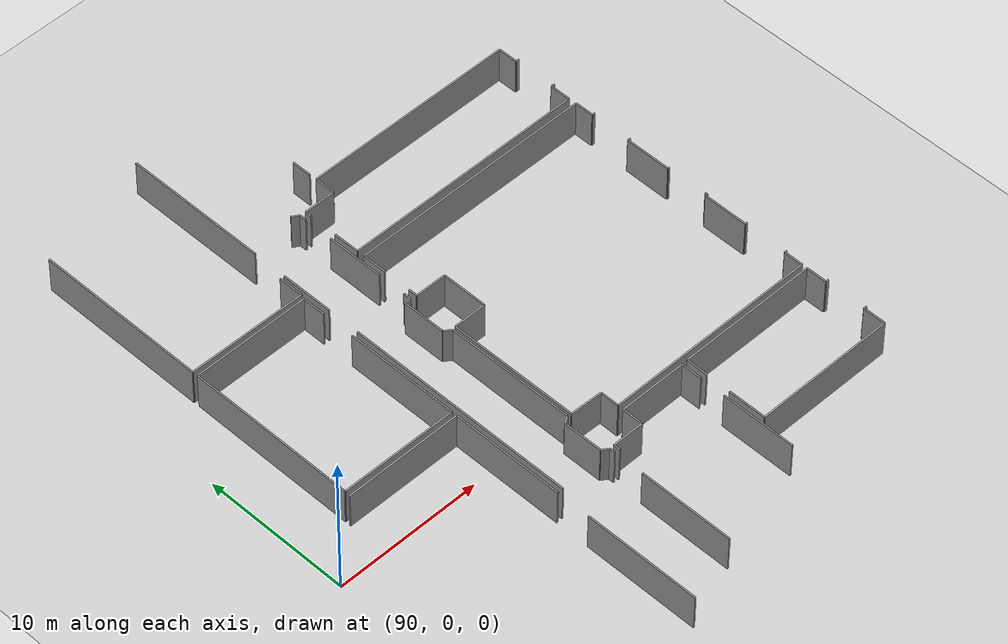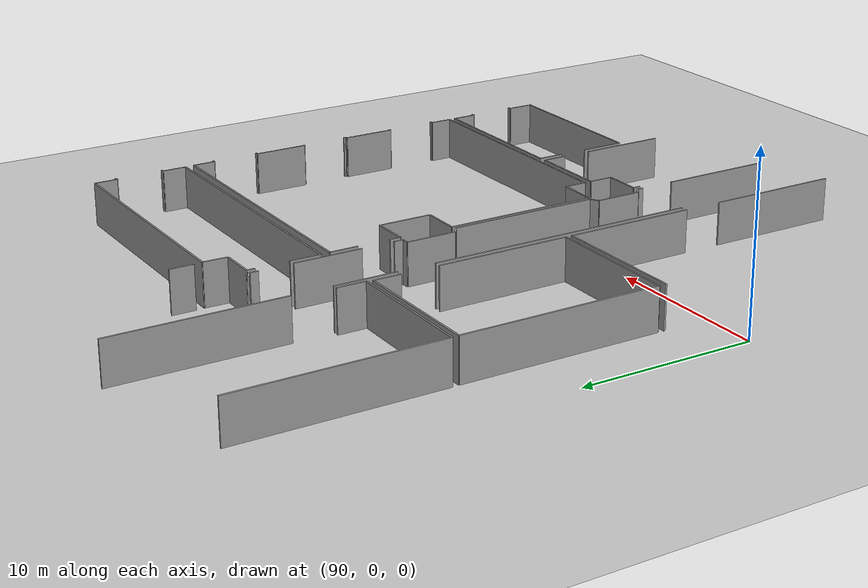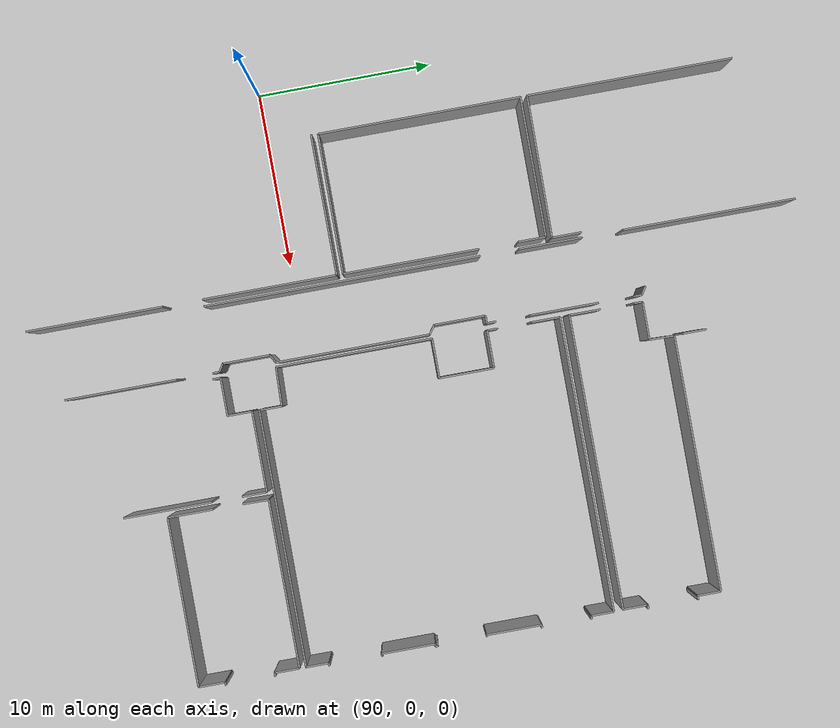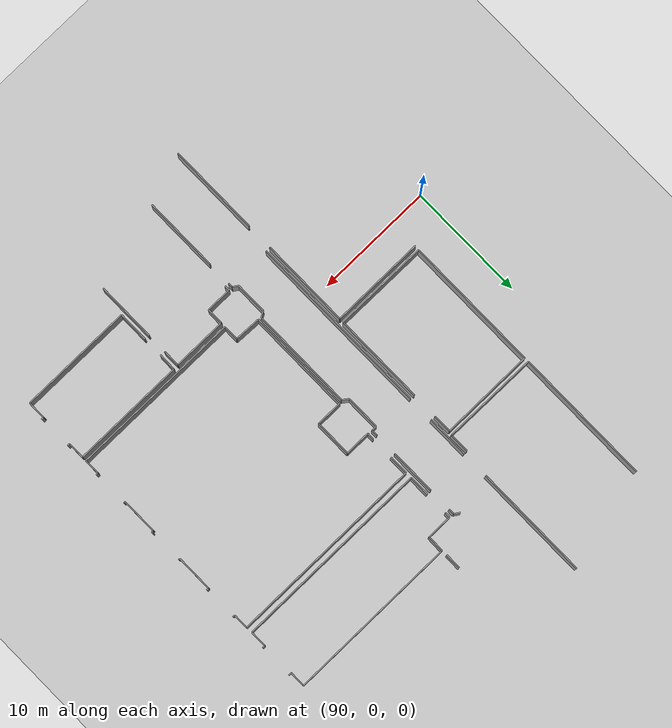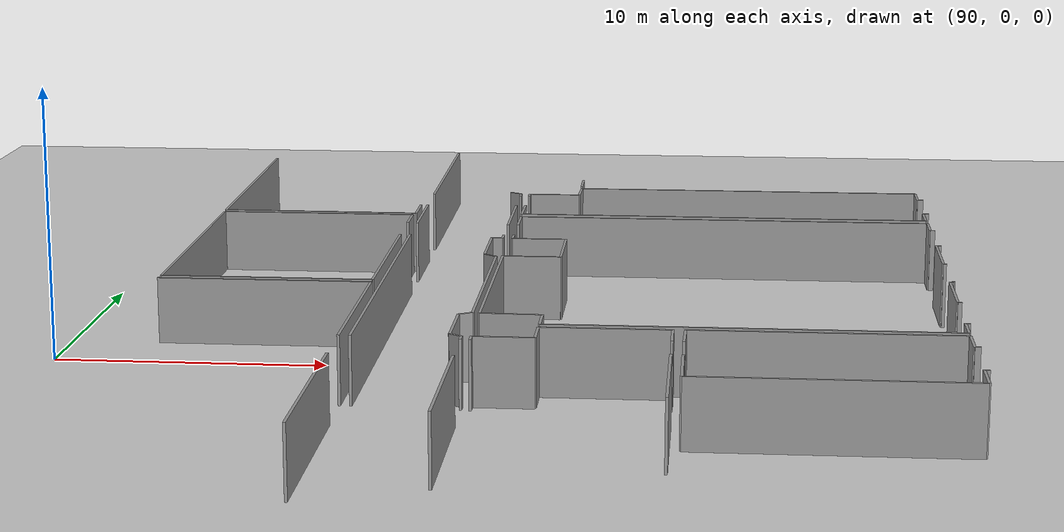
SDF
<sdf version="1.6">
 <world name="default">
  <model name="ground_plane">
   <static>1</static>
   <link name="link">
    <collision name="collision">
     <geometry><plane><normal>0 0 1</normal><size>100 100</size></plane></geometry>
     <surface><friction><ode><mu>100</mu><mu2>50</mu2></ode></friction></surface>
    </collision>
    <visual name="visual">
     <cast_shadows>0</cast_shadows>
     <geometry><plane><normal>0 0 1</normal><size>100 100</size></plane></geometry>
     <material>
      <script><uri>file://media/materials/scripts/gazebo.material</uri><name>Gazebo/Grey</name></script>
     </material>
    </visual>
   </link>
  </model>
  <model name="50036894">
   <static>1</static>
   <link name="Wall_639">
    <collision name="Wall_639_Collision">
     <geometry><box><size>15.7452339139 0.1 2.5</size></box></geometry>
     <pose>7.87261695693 0 1.25 0 0 0</pose>
    </collision>
    <visual name="Wall_639_Visual">
     <pose>7.87261695693 0 1.25 0 0 0</pose>
     <geometry><box><size>15.7452339139 0.1 2.5</size></box></geometry>
     <material>
      <script><uri>file://media/materials/scripts/gazebo.material</uri><name>Gazebo/Grey</name></script>
      <ambient>1 1 1 1</ambient>
     </material>
    </visual>
    <pose>224.466775292 -72.3017327188 0 0 0 1.57079632679</pose>
   </link>
   <link name="Wall_640">
    <collision name="Wall_640_Collision">
     <geometry><box><size>3.60517089438 0.1 2.5</size></box></geometry>
     <pose>1.80258544719 0 1.25 0 0 0</pose>
    </collision>
    <visual name="Wall_640_Visual">
     <pose>1.80258544719 0 1.25 0 0 0</pose>
     <geometry><box><size>3.60517089438 0.1 2.5</size></box></geometry>
     <material>
      <script><uri>file://media/materials/scripts/gazebo.material</uri><name>Gazebo/Grey</name></script>
      <ambient>1 1 1 1</ambient>
     </material>
    </visual>
    <pose>224.466775292 -54.3390245294 0 0 0 1.57079632679</pose>
   </link>
   <link name="Wall_641">
    <collision name="Wall_641_Collision">
     <geometry><box><size>9.82190973125 0.1 2.5</size></box></geometry>
     <pose>4.91095486562 0 1.25 0 0 0</pose>
    </collision>
    <visual name="Wall_641_Visual">
     <pose>4.91095486562 0 1.25 0 0 0</pose>
     <geometry><box><size>9.82190973125 0.1 2.5</size></box></geometry>
     <material>
      <script><uri>file://media/materials/scripts/gazebo.material</uri><name>Gazebo/Grey</name></script>
      <ambient>1 1 1 1</ambient>
     </material>
    </visual>
    <pose>224.466775292 -48.4187435411 0 0 0 1.57079632679</pose>
   </link>
   <link name="Wall_667">
    <collision name="Wall_667_Collision">
     <geometry><box><size>0.535210614389 0.1 2.5</size></box></geometry>
     <pose>0.267605307194 0 1.25 0 0 0</pose>
    </collision>
    <visual name="Wall_667_Visual">
     <pose>0.267605307194 0 1.25 0 0 0</pose>
     <geometry><box><size>0.535210614389 0.1 2.5</size></box></geometry>
     <material>
      <script><uri>file://media/materials/scripts/gazebo.material</uri><name>Gazebo/Grey</name></script>
      <ambient>1 1 1 1</ambient>
     </material>
    </visual>
    <pose>227.786393117 -47.7423935991 0 0 0 -0.55829795925</pose>
   </link>
   <link name="Wall_668">
    <collision name="Wall_668_Collision">
     <geometry><box><size>0.49071508727 0.1 2.5</size></box></geometry>
     <pose>0.245357543635 0 1.25 0 0 0</pose>
    </collision>
    <visual name="Wall_668_Visual">
     <pose>0.245357543635 0 1.25 0 0 0</pose>
     <geometry><box><size>0.49071508727 0.1 2.5</size></box></geometry>
     <material>
      <script><uri>file://media/materials/scripts/gazebo.material</uri><name>Gazebo/Grey</name></script>
      <ambient>1 1 1 1</ambient>
     </material>
    </visual>
    <pose>228.240336273 -48.0259178718 0 0 0 -1.57079632679</pose>
   </link>
   <link name="Wall_669">
    <collision name="Wall_669_Collision">
     <geometry><box><size>3.92445270052 0.1 2.5</size></box></geometry>
     <pose>1.96222635026 0 1.25 0 0 0</pose>
    </collision>
    <visual name="Wall_669_Visual">
     <pose>1.96222635026 0 1.25 0 0 0</pose>
     <geometry><box><size>3.92445270052 0.1 2.5</size></box></geometry>
     <material>
      <script><uri>file://media/materials/scripts/gazebo.material</uri><name>Gazebo/Grey</name></script>
      <ambient>1 1 1 1</ambient>
     </material>
    </visual>
    <pose>228.240336273 -50.4942020808 0 0 0 -1.57079632679</pose>
   </link>
   <link name="Wall_670">
    <collision name="Wall_670_Collision">
     <geometry><box><size>0.536870201421 0.1 2.5</size></box></geometry>
     <pose>0.268435100711 0 1.25 0 0 0</pose>
    </collision>
    <visual name="Wall_670_Visual">
     <pose>0.268435100711 0 1.25 0 0 0</pose>
     <geometry><box><size>0.536870201421 0.1 2.5</size></box></geometry>
     <material>
      <script><uri>file://media/materials/scripts/gazebo.material</uri><name>Gazebo/Grey</name></script>
      <ambient>1 1 1 1</ambient>
     </material>
    </visual>
    <pose>228.240336273 -56.33333122 0 0 0 -1.57079632679</pose>
   </link>
   <link name="Wall_671">
    <collision name="Wall_671_Collision">
     <geometry><box><size>0.433655193401 0.1 2.5</size></box></geometry>
     <pose>0.216827596701 0 1.25 0 0 0</pose>
    </collision>
    <visual name="Wall_671_Visual">
     <pose>0.216827596701 0 1.25 0 0 0</pose>
     <geometry><box><size>0.433655193401 0.1 2.5</size></box></geometry>
     <material>
      <script><uri>file://media/materials/scripts/gazebo.material</uri><name>Gazebo/Grey</name></script>
      <ambient>1 1 1 1</ambient>
     </material>
    </visual>
    <pose>228.240336273 -56.8702014214 0 0 0 3.14159265359</pose>
   </link>
   <link name="Wall_672">
    <collision name="Wall_672_Collision">
     <geometry><box><size>2.91461937881 0.1 2.5</size></box></geometry>
     <pose>1.4573096894 0 1.25 0 0 0</pose>
    </collision>
    <visual name="Wall_672_Visual">
     <pose>1.4573096894 0 1.25 0 0 0</pose>
     <geometry><box><size>2.91461937881 0.1 2.5</size></box></geometry>
     <material>
      <script><uri>file://media/materials/scripts/gazebo.material</uri><name>Gazebo/Grey</name></script>
      <ambient>1 1 1 1</ambient>
     </material>
    </visual>
    <pose>227.80668108 -56.8702014214 0 0 0 -1.57079632679</pose>
   </link>
   <link name="Wall_673">
    <collision name="Wall_673_Collision">
     <geometry><box><size>0.590643101237 0.1 2.5</size></box></geometry>
     <pose>0.295321550618 0 1.25 0 0 0</pose>
    </collision>
    <visual name="Wall_673_Visual">
     <pose>0.295321550618 0 1.25 0 0 0</pose>
     <geometry><box><size>0.590643101237 0.1 2.5</size></box></geometry>
     <material>
      <script><uri>file://media/materials/scripts/gazebo.material</uri><name>Gazebo/Grey</name></script>
      <ambient>1 1 1 1</ambient>
     </material>
    </visual>
    <pose>227.80668108 -59.7848208002 0 0 0 -0.62409274133</pose>
   </link>
   <link name="Wall_674">
    <collision name="Wall_674_Collision">
     <geometry><box><size>8.75146612227 0.1 2.5</size></box></geometry>
     <pose>4.37573306114 0 1.25 0 0 0</pose>
    </collision>
    <visual name="Wall_674_Visual">
     <pose>4.37573306114 0 1.25 0 0 0</pose>
     <geometry><box><size>8.75146612227 0.1 2.5</size></box></geometry>
     <material>
      <script><uri>file://media/materials/scripts/gazebo.material</uri><name>Gazebo/Grey</name></script>
      <ambient>1 1 1 1</ambient>
     </material>
    </visual>
    <pose>228.285984188 -60.1299697583 0 0 0 -1.57079632679</pose>
   </link>
   <link name="Wall_675">
    <collision name="Wall_675_Collision">
     <geometry><box><size>0.54582843358 0.1 2.5</size></box></geometry>
     <pose>0.27291421679 0 1.25 0 0 0</pose>
    </collision>
    <visual name="Wall_675_Visual">
     <pose>0.27291421679 0 1.25 0 0 0</pose>
     <geometry><box><size>0.54582843358 0.1 2.5</size></box></geometry>
     <material>
      <script><uri>file://media/materials/scripts/gazebo.material</uri><name>Gazebo/Grey</name></script>
      <ambient>1 1 1 1</ambient>
     </material>
    </visual>
    <pose>228.285984188 -68.8814358805 0 0 0 -2.60515719599</pose>
   </link>
   <link name="Wall_676">
    <collision name="Wall_676_Collision">
     <geometry><box><size>2.67014943352 0.1 2.5</size></box></geometry>
     <pose>1.33507471676 0 1.25 0 0 0</pose>
    </collision>
    <visual name="Wall_676_Visual">
     <pose>1.33507471676 0 1.25 0 0 0</pose>
     <geometry><box><size>2.67014943352 0.1 2.5</size></box></geometry>
     <material>
      <script><uri>file://media/materials/scripts/gazebo.material</uri><name>Gazebo/Grey</name></script>
      <ambient>1 1 1 1</ambient>
     </material>
    </visual>
    <pose>227.816825061 -69.1603953617 0 0 0 -1.57079632679</pose>
   </link>
   <link name="Wall_677">
    <collision name="Wall_677_Collision">
     <geometry><box><size>0.505877412515 0.1 2.5</size></box></geometry>
     <pose>0.252938706257 0 1.25 0 0 0</pose>
    </collision>
    <visual name="Wall_677_Visual">
     <pose>0.252938706257 0 1.25 0 0 0</pose>
     <geometry><box><size>0.505877412515 0.1 2.5</size></box></geometry>
     <material>
      <script><uri>file://media/materials/scripts/gazebo.material</uri><name>Gazebo/Grey</name></script>
      <ambient>1 1 1 1</ambient>
     </material>
    </visual>
    <pose>227.816825061 -71.8305447952 0 0 0 -0.578686966468</pose>
   </link>
   <link name="Wall_678">
    <collision name="Wall_678_Collision">
     <geometry><box><size>0.381160091042 0.1 2.5</size></box></geometry>
     <pose>0.190580045521 0 1.25 0 0 0</pose>
    </collision>
    <visual name="Wall_678_Visual">
     <pose>0.190580045521 0 1.25 0 0 0</pose>
     <geometry><box><size>0.381160091042 0.1 2.5</size></box></geometry>
     <material>
      <script><uri>file://media/materials/scripts/gazebo.material</uri><name>Gazebo/Grey</name></script>
      <ambient>1 1 1 1</ambient>
     </material>
    </visual>
    <pose>228.240336273 -72.1072218806 0 0 0 -1.57079632679</pose>
   </link>
   <link name="Wall_679">
    <collision name="Wall_679_Collision">
     <geometry><box><size>6.38766491894 0.1 2.5</size></box></geometry>
     <pose>3.19383245947 0 1.25 0 0 0</pose>
    </collision>
    <visual name="Wall_679_Visual">
     <pose>3.19383245947 0 1.25 0 0 0</pose>
     <geometry><box><size>6.38766491894 0.1 2.5</size></box></geometry>
     <material>
      <script><uri>file://media/materials/scripts/gazebo.material</uri><name>Gazebo/Grey</name></script>
      <ambient>1 1 1 1</ambient>
     </material>
    </visual>
    <pose>228.240336273 -74.5192069943 0 0 0 -1.57079632679</pose>
   </link>
   <link name="Wall_761">
    <collision name="Wall_761_Collision">
     <geometry><box><size>8.02135308028 0.1 2.5</size></box></geometry>
     <pose>4.01067654014 0 1.25 0 0 0</pose>
    </collision>
    <visual name="Wall_761_Visual">
     <pose>4.01067654014 0 1.25 0 0 0</pose>
     <geometry><box><size>8.02135308028 0.1 2.5</size></box></geometry>
     <material>
      <script><uri>file://media/materials/scripts/gazebo.material</uri><name>Gazebo/Grey</name></script>
      <ambient>1 1 1 1</ambient>
     </material>
    </visual>
    <pose>216.052342943 -64.6645829239 0 0 0 0.0</pose>
   </link>
   <link name="Wall_762">
    <collision name="Wall_762_Collision">
     <geometry><box><size>7.64196818594 0.1 2.5</size></box></geometry>
     <pose>3.82098409297 0 1.25 0 0 0</pose>
    </collision>
    <visual name="Wall_762_Visual">
     <pose>3.82098409297 0 1.25 0 0 0</pose>
     <geometry><box><size>7.64196818594 0.1 2.5</size></box></geometry>
     <material>
      <script><uri>file://media/materials/scripts/gazebo.material</uri><name>Gazebo/Grey</name></script>
      <ambient>1 1 1 1</ambient>
     </material>
    </visual>
    <pose>224.073696023 -64.6645829239 0 0 0 -1.57079632679</pose>
   </link>
   <link name="Wall_763">
    <collision name="Wall_763_Collision">
     <geometry><box><size>7.79894629396 0.1 2.5</size></box></geometry>
     <pose>3.89947314698 0 1.25 0 0 0</pose>
    </collision>
    <visual name="Wall_763_Visual">
     <pose>3.89947314698 0 1.25 0 0 0</pose>
     <geometry><box><size>7.79894629396 0.1 2.5</size></box></geometry>
     <material>
      <script><uri>file://media/materials/scripts/gazebo.material</uri><name>Gazebo/Grey</name></script>
      <ambient>1 1 1 1</ambient>
     </material>
    </visual>
    <pose>224.073696023 -74.5742380919 0 0 0 -1.57079632679</pose>
   </link>
   <link name="Wall_766">
    <collision name="Wall_766_Collision">
     <geometry><box><size>0.441009579722 0.1 2.5</size></box></geometry>
     <pose>0.220504789861 0 1.25 0 0 0</pose>
    </collision>
    <visual name="Wall_766_Visual">
     <pose>0.220504789861 0 1.25 0 0 0</pose>
     <geometry><box><size>0.441009579722 0.1 2.5</size></box></geometry>
     <material>
      <script><uri>file://media/materials/scripts/gazebo.material</uri><name>Gazebo/Grey</name></script>
      <ambient>1 1 1 1</ambient>
     </material>
    </visual>
    <pose>228.577623646 -72.5368194815 0 0 0 1.57079632679</pose>
   </link>
   <link name="Wall_767">
    <collision name="Wall_767_Collision">
     <geometry><box><size>2.16066798116 0.1 2.5</size></box></geometry>
     <pose>1.08033399058 0 1.25 0 0 0</pose>
    </collision>
    <visual name="Wall_767_Visual">
     <pose>1.08033399058 0 1.25 0 0 0</pose>
     <geometry><box><size>2.16066798116 0.1 2.5</size></box></geometry>
     <material>
      <script><uri>file://media/materials/scripts/gazebo.material</uri><name>Gazebo/Grey</name></script>
      <ambient>1 1 1 1</ambient>
     </material>
    </visual>
    <pose>228.577623646 -72.0958099018 0 0 0 0.0</pose>
   </link>
   <link name="Wall_768">
    <collision name="Wall_768_Collision">
     <geometry><box><size>1.39986939624 0.1 2.5</size></box></geometry>
     <pose>0.699934698121 0 1.25 0 0 0</pose>
    </collision>
    <visual name="Wall_768_Visual">
     <pose>0.699934698121 0 1.25 0 0 0</pose>
     <geometry><box><size>1.39986939624 0.1 2.5</size></box></geometry>
     <material>
      <script><uri>file://media/materials/scripts/gazebo.material</uri><name>Gazebo/Grey</name></script>
      <ambient>1 1 1 1</ambient>
     </material>
    </visual>
    <pose>230.738291627 -72.0958099018 0 0 0 1.57079632679</pose>
   </link>
   <link name="Wall_769">
    <collision name="Wall_769_Collision">
     <geometry><box><size>4.60283143873 0.1 2.5</size></box></geometry>
     <pose>2.30141571937 0 1.25 0 0 0</pose>
    </collision>
    <visual name="Wall_769_Visual">
     <pose>2.30141571937 0 1.25 0 0 0</pose>
     <geometry><box><size>4.60283143873 0.1 2.5</size></box></geometry>
     <material>
      <script><uri>file://media/materials/scripts/gazebo.material</uri><name>Gazebo/Grey</name></script>
      <ambient>1 1 1 1</ambient>
     </material>
    </visual>
    <pose>230.738291627 -70.6959405056 0 0 0 0.0</pose>
   </link>
   <link name="Wall_770">
    <collision name="Wall_770_Collision">
     <geometry><box><size>1.41888936087 0.1 2.5</size></box></geometry>
     <pose>0.709444680433 0 1.25 0 0 0</pose>
    </collision>
    <visual name="Wall_770_Visual">
     <pose>0.709444680433 0 1.25 0 0 0</pose>
     <geometry><box><size>1.41888936087 0.1 2.5</size></box></geometry>
     <material>
      <script><uri>file://media/materials/scripts/gazebo.material</uri><name>Gazebo/Grey</name></script>
      <ambient>1 1 1 1</ambient>
     </material>
    </visual>
    <pose>235.341123066 -70.6959405056 0 0 0 -1.57079632679</pose>
   </link>
   <link name="Wall_771">
    <collision name="Wall_771_Collision">
     <geometry><box><size>5.03572583355 0.1 2.5</size></box></geometry>
     <pose>2.51786291677 0 1.25 0 0 0</pose>
    </collision>
    <visual name="Wall_771_Visual">
     <pose>2.51786291677 0 1.25 0 0 0</pose>
     <geometry><box><size>5.03572583355 0.1 2.5</size></box></geometry>
     <material>
      <script><uri>file://media/materials/scripts/gazebo.material</uri><name>Gazebo/Grey</name></script>
      <ambient>1 1 1 1</ambient>
     </material>
    </visual>
    <pose>235.341123066 -73.8190186966 0 0 0 -1.57079632679</pose>
   </link>
   <link name="Wall_776">
    <collision name="Wall_776_Collision">
     <geometry><box><size>9.60127814162 0.1 2.5</size></box></geometry>
     <pose>4.80063907081 0 1.25 0 0 0</pose>
    </collision>
    <visual name="Wall_776_Visual">
     <pose>4.80063907081 0 1.25 0 0 0</pose>
     <geometry><box><size>9.60127814162 0.1 2.5</size></box></geometry>
     <material>
      <script><uri>file://media/materials/scripts/gazebo.material</uri><name>Gazebo/Grey</name></script>
      <ambient>1 1 1 1</ambient>
     </material>
    </visual>
    <pose>235.779850249 -70.6675373584 0 0 0 0.0</pose>
   </link>
   <link name="Wall_777">
    <collision name="Wall_777_Collision">
     <geometry><box><size>1.42066455756 0.1 2.5</size></box></geometry>
     <pose>0.710332278782 0 1.25 0 0 0</pose>
    </collision>
    <visual name="Wall_777_Visual">
     <pose>0.710332278782 0 1.25 0 0 0</pose>
     <geometry><box><size>1.42066455756 0.1 2.5</size></box></geometry>
     <material>
      <script><uri>file://media/materials/scripts/gazebo.material</uri><name>Gazebo/Grey</name></script>
      <ambient>1 1 1 1</ambient>
     </material>
    </visual>
    <pose>245.381128391 -70.6675373584 0 0 0 -1.57079632679</pose>
   </link>
   <link name="Wall_778">
    <collision name="Wall_778_Collision">
     <geometry><box><size>0.210487608493 0.1 2.5</size></box></geometry>
     <pose>0.105243804246 0 1.25 0 0 0</pose>
    </collision>
    <visual name="Wall_778_Visual">
     <pose>0.105243804246 0 1.25 0 0 0</pose>
     <geometry><box><size>0.210487608493 0.1 2.5</size></box></geometry>
     <material>
      <script><uri>file://media/materials/scripts/gazebo.material</uri><name>Gazebo/Grey</name></script>
      <ambient>1 1 1 1</ambient>
     </material>
    </visual>
    <pose>245.381128391 -72.0882019159 0 0 0 0.0</pose>
   </link>
   <link name="Wall_779">
    <collision name="Wall_779_Collision">
     <geometry><box><size>0.190199646229 0.1 2.5</size></box></geometry>
     <pose>0.0950998231143 0 1.25 0 0 0</pose>
    </collision>
    <visual name="Wall_779_Visual">
     <pose>0.0950998231143 0 1.25 0 0 0</pose>
     <geometry><box><size>0.190199646229 0.1 2.5</size></box></geometry>
     <material>
      <script><uri>file://media/materials/scripts/gazebo.material</uri><name>Gazebo/Grey</name></script>
      <ambient>1 1 1 1</ambient>
     </material>
    </visual>
    <pose>245.591616 -74.8955486943 0 0 0 3.14159265359</pose>
   </link>
   <link name="Wall_780">
    <collision name="Wall_780_Collision">
     <geometry><box><size>1.52819075757 0.1 2.5</size></box></geometry>
     <pose>0.764095378783 0 1.25 0 0 0</pose>
    </collision>
    <visual name="Wall_780_Visual">
     <pose>0.764095378783 0 1.25 0 0 0</pose>
     <geometry><box><size>1.52819075757 0.1 2.5</size></box></geometry>
     <material>
      <script><uri>file://media/materials/scripts/gazebo.material</uri><name>Gazebo/Grey</name></script>
      <ambient>1 1 1 1</ambient>
     </material>
    </visual>
    <pose>245.401416353 -74.8955486943 0 0 0 -1.57079632679</pose>
   </link>
   <link name="Wall_781">
    <collision name="Wall_781_Collision">
     <geometry><box><size>9.65199804728 0.1 2.5</size></box></geometry>
     <pose>4.82599902364 0 1.25 0 0 0</pose>
    </collision>
    <visual name="Wall_781_Visual">
     <pose>4.82599902364 0 1.25 0 0 0</pose>
     <geometry><box><size>9.65199804728 0.1 2.5</size></box></geometry>
     <material>
      <script><uri>file://media/materials/scripts/gazebo.material</uri><name>Gazebo/Grey</name></script>
      <ambient>1 1 1 1</ambient>
     </material>
    </visual>
    <pose>245.401416353 -76.4237394518 0 0 0 3.14159265359</pose>
   </link>
   <link name="Wall_782">
    <collision name="Wall_782_Collision">
     <geometry><box><size>2.58671518871 0.1 2.5</size></box></geometry>
     <pose>1.29335759435 0 1.25 0 0 0</pose>
    </collision>
    <visual name="Wall_782_Visual">
     <pose>1.29335759435 0 1.25 0 0 0</pose>
     <geometry><box><size>2.58671518871 0.1 2.5</size></box></geometry>
     <material>
      <script><uri>file://media/materials/scripts/gazebo.material</uri><name>Gazebo/Grey</name></script>
      <ambient>1 1 1 1</ambient>
     </material>
    </visual>
    <pose>235.749418306 -76.4237394518 0 0 0 1.57079632679</pose>
   </link>
   <link name="Wall_783">
    <collision name="Wall_783_Collision">
     <geometry><box><size>1.49248991122 0.1 2.5</size></box></geometry>
     <pose>0.746244955609 0 1.25 0 0 0</pose>
    </collision>
    <visual name="Wall_783_Visual">
     <pose>0.746244955609 0 1.25 0 0 0</pose>
     <geometry><box><size>1.49248991122 0.1 2.5</size></box></geometry>
     <material>
      <script><uri>file://media/materials/scripts/gazebo.material</uri><name>Gazebo/Grey</name></script>
      <ambient>1 1 1 1</ambient>
     </material>
    </visual>
    <pose>235.749418306 -72.1597169829 0 0 0 1.550404864</pose>
   </link>
   <link name="Wall_792">
    <collision name="Wall_792_Collision">
     <geometry><box><size>8.89246746001 0.1 2.5</size></box></geometry>
     <pose>4.44623373001 0 1.25 0 0 0</pose>
    </collision>
    <visual name="Wall_792_Visual">
     <pose>4.44623373001 0 1.25 0 0 0</pose>
     <geometry><box><size>8.89246746001 0.1 2.5</size></box></geometry>
     <material>
      <script><uri>file://media/materials/scripts/gazebo.material</uri><name>Gazebo/Grey</name></script>
      <ambient>1 1 1 1</ambient>
     </material>
    </visual>
    <pose>228.534511726 -68.9354525801 0 0 0 1.57079632679</pose>
   </link>
   <link name="Wall_793">
    <collision name="Wall_793_Collision">
     <geometry><box><size>2.25196381135 0.1 2.5</size></box></geometry>
     <pose>1.12598190567 0 1.25 0 0 0</pose>
    </collision>
    <visual name="Wall_793_Visual">
     <pose>1.12598190567 0 1.25 0 0 0</pose>
     <geometry><box><size>2.25196381135 0.1 2.5</size></box></geometry>
     <material>
      <script><uri>file://media/materials/scripts/gazebo.material</uri><name>Gazebo/Grey</name></script>
      <ambient>1 1 1 1</ambient>
     </material>
    </visual>
    <pose>228.534511726 -60.04298512 0 0 0 0.0</pose>
   </link>
   <link name="Wall_794">
    <collision name="Wall_794_Collision">
     <geometry><box><size>3.11749900145 0.1 2.5</size></box></geometry>
     <pose>1.55874950073 0 1.25 0 0 0</pose>
    </collision>
    <visual name="Wall_794_Visual">
     <pose>1.55874950073 0 1.25 0 0 0</pose>
     <geometry><box><size>3.11749900145 0.1 2.5</size></box></geometry>
     <material>
      <script><uri>file://media/materials/scripts/gazebo.material</uri><name>Gazebo/Grey</name></script>
      <ambient>1 1 1 1</ambient>
     </material>
    </visual>
    <pose>230.786475537 -60.04298512 0 0 0 1.57079632679</pose>
   </link>
   <link name="Wall_795">
    <collision name="Wall_795_Collision">
     <geometry><box><size>2.14545200946 0.1 2.5</size></box></geometry>
     <pose>1.07272600473 0 1.25 0 0 0</pose>
    </collision>
    <visual name="Wall_795_Visual">
     <pose>1.07272600473 0 1.25 0 0 0</pose>
     <geometry><box><size>2.14545200946 0.1 2.5</size></box></geometry>
     <material>
      <script><uri>file://media/materials/scripts/gazebo.material</uri><name>Gazebo/Grey</name></script>
      <ambient>1 1 1 1</ambient>
     </material>
    </visual>
    <pose>230.786475537 -56.9254861186 0 0 0 3.14159265359</pose>
   </link>
   <link name="Wall_796">
    <collision name="Wall_796_Collision">
     <geometry><box><size>0.60889246746 0.1 2.5</size></box></geometry>
     <pose>0.30444623373 0 1.25 0 0 0</pose>
    </collision>
    <visual name="Wall_796_Visual">
     <pose>0.30444623373 0 1.25 0 0 0</pose>
     <geometry><box><size>0.60889246746 0.1 2.5</size></box></geometry>
     <material>
      <script><uri>file://media/materials/scripts/gazebo.material</uri><name>Gazebo/Grey</name></script>
      <ambient>1 1 1 1</ambient>
     </material>
    </visual>
    <pose>228.641023528 -56.9254861186 0 0 0 1.57079632679</pose>
   </link>
   <link name="Wall_797">
    <collision name="Wall_797_Collision">
     <geometry><box><size>1.64915773257 0.1 2.5</size></box></geometry>
     <pose>0.824578866283 0 1.25 0 0 0</pose>
    </collision>
    <visual name="Wall_797_Visual">
     <pose>0.824578866283 0 1.25 0 0 0</pose>
     <geometry><box><size>1.64915773257 0.1 2.5</size></box></geometry>
     <material>
      <script><uri>file://media/materials/scripts/gazebo.material</uri><name>Gazebo/Grey</name></script>
      <ambient>1 1 1 1</ambient>
     </material>
    </visual>
    <pose>228.641023528 -54.415611587 0 0 0 1.57079632679</pose>
   </link>
   <link name="Wall_798">
    <collision name="Wall_798_Collision">
     <geometry><box><size>16.7781447927 0.1 2.5</size></box></geometry>
     <pose>8.38907239633 0 1.25 0 0 0</pose>
    </collision>
    <visual name="Wall_798_Visual">
     <pose>8.38907239633 0 1.25 0 0 0</pose>
     <geometry><box><size>16.7781447927 0.1 2.5</size></box></geometry>
     <material>
      <script><uri>file://media/materials/scripts/gazebo.material</uri><name>Gazebo/Grey</name></script>
      <ambient>1 1 1 1</ambient>
     </material>
    </visual>
    <pose>228.641023528 -52.7664538544 0 0 0 0.0</pose>
   </link>
   <link name="Wall_799">
    <collision name="Wall_799_Collision">
     <geometry><box><size>1.30071198068 0.1 2.5</size></box></geometry>
     <pose>0.650355990338 0 1.25 0 0 0</pose>
    </collision>
    <visual name="Wall_799_Visual">
     <pose>0.650355990338 0 1.25 0 0 0</pose>
     <geometry><box><size>1.30071198068 0.1 2.5</size></box></geometry>
     <material>
      <script><uri>file://media/materials/scripts/gazebo.material</uri><name>Gazebo/Grey</name></script>
      <ambient>1 1 1 1</ambient>
     </material>
    </visual>
    <pose>245.41916832 -52.7664538544 0 0 0 -1.57079632679</pose>
   </link>
   <link name="Wall_800">
    <collision name="Wall_800_Collision">
     <geometry><box><size>0.190199646229 0.1 2.5</size></box></geometry>
     <pose>0.0950998231143 0 1.25 0 0 0</pose>
    </collision>
    <visual name="Wall_800_Visual">
     <pose>0.0950998231143 0 1.25 0 0 0</pose>
     <geometry><box><size>0.190199646229 0.1 2.5</size></box></geometry>
     <material>
      <script><uri>file://media/materials/scripts/gazebo.material</uri><name>Gazebo/Grey</name></script>
      <ambient>1 1 1 1</ambient>
     </material>
    </visual>
    <pose>245.41916832 -54.0671658351 0 0 0 0.0</pose>
   </link>
   <link name="Wall_801">
    <collision name="Wall_801_Collision">
     <geometry><box><size>0.190199646229 0.1 2.5</size></box></geometry>
     <pose>0.0950998231143 0 1.25 0 0 0</pose>
    </collision>
    <visual name="Wall_801_Visual">
     <pose>0.0950998231143 0 1.25 0 0 0</pose>
     <geometry><box><size>0.190199646229 0.1 2.5</size></box></geometry>
     <material>
      <script><uri>file://media/materials/scripts/gazebo.material</uri><name>Gazebo/Grey</name></script>
      <ambient>1 1 1 1</ambient>
     </material>
    </visual>
    <pose>245.609367967 -56.8808526016 0 0 0 3.14159265359</pose>
   </link>
   <link name="Wall_802">
    <collision name="Wall_802_Collision">
     <geometry><box><size>3.12840378117 0.1 2.5</size></box></geometry>
     <pose>1.56420189058 0 1.25 0 0 0</pose>
    </collision>
    <visual name="Wall_802_Visual">
     <pose>1.56420189058 0 1.25 0 0 0</pose>
     <geometry><box><size>3.12840378117 0.1 2.5</size></box></geometry>
     <material>
      <script><uri>file://media/materials/scripts/gazebo.material</uri><name>Gazebo/Grey</name></script>
      <ambient>1 1 1 1</ambient>
     </material>
    </visual>
    <pose>245.41916832 -56.8808526016 0 0 0 -1.57079632679</pose>
   </link>
   <link name="Wall_803">
    <collision name="Wall_803_Collision">
     <geometry><box><size>0.121727773586 0.1 2.5</size></box></geometry>
     <pose>0.0608638867932 0 1.25 0 0 0</pose>
    </collision>
    <visual name="Wall_803_Visual">
     <pose>0.0608638867932 0 1.25 0 0 0</pose>
     <geometry><box><size>0.121727773586 0.1 2.5</size></box></geometry>
     <material>
      <script><uri>file://media/materials/scripts/gazebo.material</uri><name>Gazebo/Grey</name></script>
      <ambient>1 1 1 1</ambient>
     </material>
    </visual>
    <pose>245.41916832 -60.0092563828 0 0 0 0.0</pose>
   </link>
   <link name="Wall_804">
    <collision name="Wall_804_Collision">
     <geometry><box><size>0.164332494342 0.1 2.5</size></box></geometry>
     <pose>0.0821662471708 0 1.25 0 0 0</pose>
    </collision>
    <visual name="Wall_804_Visual">
     <pose>0.0821662471708 0 1.25 0 0 0</pose>
     <geometry><box><size>0.164332494342 0.1 2.5</size></box></geometry>
     <material>
      <script><uri>file://media/materials/scripts/gazebo.material</uri><name>Gazebo/Grey</name></script>
      <ambient>1 1 1 1</ambient>
     </material>
    </visual>
    <pose>245.540896094 -62.7813528267 0 0 0 -1.57079632679</pose>
   </link>
   <link name="Wall_805">
    <collision name="Wall_805_Collision">
     <geometry><box><size>0.139479740568 0.1 2.5</size></box></geometry>
     <pose>0.0697398702838 0 1.25 0 0 0</pose>
    </collision>
    <visual name="Wall_805_Visual">
     <pose>0.0697398702838 0 1.25 0 0 0</pose>
     <geometry><box><size>0.139479740568 0.1 2.5</size></box></geometry>
     <material>
      <script><uri>file://media/materials/scripts/gazebo.material</uri><name>Gazebo/Grey</name></script>
      <ambient>1 1 1 1</ambient>
     </material>
    </visual>
    <pose>245.540896094 -62.945685321 0 0 0 3.14159265359</pose>
   </link>
   <link name="Wall_806">
    <collision name="Wall_806_Collision">
     <geometry><box><size>3.04116554343 0.1 2.5</size></box></geometry>
     <pose>1.52058277172 0 1.25 0 0 0</pose>
    </collision>
    <visual name="Wall_806_Visual">
     <pose>1.52058277172 0 1.25 0 0 0</pose>
     <geometry><box><size>3.04116554343 0.1 2.5</size></box></geometry>
     <material>
      <script><uri>file://media/materials/scripts/gazebo.material</uri><name>Gazebo/Grey</name></script>
      <ambient>1 1 1 1</ambient>
     </material>
    </visual>
    <pose>245.401416353 -62.945685321 0 0 0 -1.57079632679</pose>
   </link>
   <link name="Wall_807">
    <collision name="Wall_807_Collision">
     <geometry><box><size>0.152159716983 0.1 2.5</size></box></geometry>
     <pose>0.0760798584915 0 1.25 0 0 0</pose>
    </collision>
    <visual name="Wall_807_Visual">
     <pose>0.0760798584915 0 1.25 0 0 0</pose>
     <geometry><box><size>0.152159716983 0.1 2.5</size></box></geometry>
     <material>
      <script><uri>file://media/materials/scripts/gazebo.material</uri><name>Gazebo/Grey</name></script>
      <ambient>1 1 1 1</ambient>
     </material>
    </visual>
    <pose>245.401416353 -65.9868508645 0 0 0 0.0</pose>
   </link>
   <link name="Wall_808">
    <collision name="Wall_808_Collision">
     <geometry><box><size>0.172447679247 0.1 2.5</size></box></geometry>
     <pose>0.0862238396236 0 1.25 0 0 0</pose>
    </collision>
    <visual name="Wall_808_Visual">
     <pose>0.0862238396236 0 1.25 0 0 0</pose>
     <geometry><box><size>0.172447679247 0.1 2.5</size></box></geometry>
     <material>
      <script><uri>file://media/materials/scripts/gazebo.material</uri><name>Gazebo/Grey</name></script>
      <ambient>1 1 1 1</ambient>
     </material>
    </visual>
    <pose>245.55357607 -68.9955556683 0 0 0 3.14159265359</pose>
   </link>
   <link name="Wall_809">
    <collision name="Wall_809_Collision">
     <geometry><box><size>1.29868318445 0.1 2.5</size></box></geometry>
     <pose>0.649341592225 0 1.25 0 0 0</pose>
    </collision>
    <visual name="Wall_809_Visual">
     <pose>0.649341592225 0 1.25 0 0 0</pose>
     <geometry><box><size>1.29868318445 0.1 2.5</size></box></geometry>
     <material>
      <script><uri>file://media/materials/scripts/gazebo.material</uri><name>Gazebo/Grey</name></script>
      <ambient>1 1 1 1</ambient>
     </material>
    </visual>
    <pose>245.381128391 -68.9955556683 0 0 0 -1.57079632679</pose>
   </link>
   <link name="Wall_810">
    <collision name="Wall_810_Collision">
     <geometry><box><size>14.6276207926 0.1 2.5</size></box></geometry>
     <pose>7.31381039631 0 1.25 0 0 0</pose>
    </collision>
    <visual name="Wall_810_Visual">
     <pose>7.31381039631 0 1.25 0 0 0</pose>
     <geometry><box><size>14.6276207926 0.1 2.5</size></box></geometry>
     <material>
      <script><uri>file://media/materials/scripts/gazebo.material</uri><name>Gazebo/Grey</name></script>
      <ambient>1 1 1 1</ambient>
     </material>
    </visual>
    <pose>245.381128391 -70.2942388527 0 0 0 3.14159265359</pose>
   </link>
   <link name="Wall_811">
    <collision name="Wall_811_Collision">
     <geometry><box><size>1.28549600898 0.1 2.5</size></box></geometry>
     <pose>0.642748004489 0 1.25 0 0 0</pose>
    </collision>
    <visual name="Wall_811_Visual">
     <pose>0.642748004489 0 1.25 0 0 0</pose>
     <geometry><box><size>1.28549600898 0.1 2.5</size></box></geometry>
     <material>
      <script><uri>file://media/materials/scripts/gazebo.material</uri><name>Gazebo/Grey</name></script>
      <ambient>1 1 1 1</ambient>
     </material>
    </visual>
    <pose>230.753507598 -70.2942388527 0 0 0 1.57079632679</pose>
   </link>
   <link name="Wall_812">
    <collision name="Wall_812_Collision">
     <geometry><box><size>2.22020587912 0.1 2.5</size></box></geometry>
     <pose>1.11010293956 0 1.25 0 0 0</pose>
    </collision>
    <visual name="Wall_812_Visual">
     <pose>1.11010293956 0 1.25 0 0 0</pose>
     <geometry><box><size>2.22020587912 0.1 2.5</size></box></geometry>
     <material>
      <script><uri>file://media/materials/scripts/gazebo.material</uri><name>Gazebo/Grey</name></script>
      <ambient>1 1 1 1</ambient>
     </material>
    </visual>
    <pose>230.753507598 -69.0087428437 0 0 0 3.10857608445</pose>
   </link>
   <link name="Wall_813">
    <collision name="Wall_813_Collision">
     <geometry><box><size>11.5286345567 0.1 2.5</size></box></geometry>
     <pose>5.76431727837 0 1.25 0 0 0</pose>
    </collision>
    <visual name="Wall_813_Visual">
     <pose>5.76431727837 0 1.25 0 0 0</pose>
     <geometry><box><size>11.5286345567 0.1 2.5</size></box></geometry>
     <material>
      <script><uri>file://media/materials/scripts/gazebo.material</uri><name>Gazebo/Grey</name></script>
      <ambient>1 1 1 1</ambient>
     </material>
    </visual>
    <pose>216.108134839 -64.2720108541 0 0 0 1.57079632679</pose>
   </link>
   <link name="Wall_814">
    <collision name="Wall_814_Collision">
     <geometry><box><size>7.96556118406 0.1 2.5</size></box></geometry>
     <pose>3.98278059203 0 1.25 0 0 0</pose>
    </collision>
    <visual name="Wall_814_Visual">
     <pose>3.98278059203 0 1.25 0 0 0</pose>
     <geometry><box><size>7.96556118406 0.1 2.5</size></box></geometry>
     <material>
      <script><uri>file://media/materials/scripts/gazebo.material</uri><name>Gazebo/Grey</name></script>
      <ambient>1 1 1 1</ambient>
     </material>
    </visual>
    <pose>216.108134839 -52.7433762973 0 0 0 0.0</pose>
   </link>
   <link name="Wall_815">
    <collision name="Wall_815_Collision">
     <geometry><box><size>1.57231707549 0.1 2.5</size></box></geometry>
     <pose>0.786158537745 0 1.25 0 0 0</pose>
    </collision>
    <visual name="Wall_815_Visual">
     <pose>0.786158537745 0 1.25 0 0 0</pose>
     <geometry><box><size>1.57231707549 0.1 2.5</size></box></geometry>
     <material>
      <script><uri>file://media/materials/scripts/gazebo.material</uri><name>Gazebo/Grey</name></script>
      <ambient>1 1 1 1</ambient>
     </material>
    </visual>
    <pose>224.073696023 -52.7433762973 0 0 0 -1.57079632679</pose>
   </link>
   <link name="Wall_816">
    <collision name="Wall_816_Collision">
     <geometry><box><size>7.76115996424 0.1 2.5</size></box></geometry>
     <pose>3.88057998212 0 1.25 0 0 0</pose>
    </collision>
    <visual name="Wall_816_Visual">
     <pose>3.88057998212 0 1.25 0 0 0</pose>
     <geometry><box><size>7.76115996424 0.1 2.5</size></box></geometry>
     <material>
      <script><uri>file://media/materials/scripts/gazebo.material</uri><name>Gazebo/Grey</name></script>
      <ambient>1 1 1 1</ambient>
     </material>
    </visual>
    <pose>224.073696023 -56.544072428 0 0 0 -1.57079632679</pose>
   </link>
   <link name="Wall_817">
    <collision name="Wall_817_Collision">
     <geometry><box><size>7.9656304614 0.1 2.5</size></box></geometry>
     <pose>3.9828152307 0 1.25 0 0 0</pose>
    </collision>
    <visual name="Wall_817_Visual">
     <pose>3.9828152307 0 1.25 0 0 0</pose>
     <geometry><box><size>7.9656304614 0.1 2.5</size></box></geometry>
     <material>
      <script><uri>file://media/materials/scripts/gazebo.material</uri><name>Gazebo/Grey</name></script>
      <ambient>1 1 1 1</ambient>
     </material>
    </visual>
    <pose>224.073696023 -64.3052323923 0 0 0 3.13742203148</pose>
   </link>
   <link name="Wall_818">
    <collision name="Wall_818_Collision">
     <geometry><box><size>11.6922062525 0.1 2.5</size></box></geometry>
     <pose>5.84610312625 0 1.25 0 0 0</pose>
    </collision>
    <visual name="Wall_818_Visual">
     <pose>5.84610312625 0 1.25 0 0 0</pose>
     <geometry><box><size>11.6922062525 0.1 2.5</size></box></geometry>
     <material>
      <script><uri>file://media/materials/scripts/gazebo.material</uri><name>Gazebo/Grey</name></script>
      <ambient>1 1 1 1</ambient>
     </material>
    </visual>
    <pose>216.090382872 -52.3637378034 0 0 0 1.57079632679</pose>
   </link>
   <link name="Wall_821">
    <collision name="Wall_821_Collision">
     <geometry><box><size>1.68745126134 0.1 2.5</size></box></geometry>
     <pose>0.84372563067 0 1.25 0 0 0</pose>
    </collision>
    <visual name="Wall_821_Visual">
     <pose>0.84372563067 0 1.25 0 0 0</pose>
     <geometry><box><size>1.68745126134 0.1 2.5</size></box></geometry>
     <material>
      <script><uri>file://media/materials/scripts/gazebo.material</uri><name>Gazebo/Grey</name></script>
      <ambient>1 1 1 1</ambient>
     </material>
    </visual>
    <pose>224.180207825 -50.733853635 0 0 0 -1.57079632679</pose>
   </link>
   <link name="Wall_822">
    <collision name="Wall_822_Collision">
     <geometry><box><size>8.09002977369 0.1 2.5</size></box></geometry>
     <pose>4.04501488684 0 1.25 0 0 0</pose>
    </collision>
    <visual name="Wall_822_Visual">
     <pose>4.04501488684 0 1.25 0 0 0</pose>
     <geometry><box><size>8.09002977369 0.1 2.5</size></box></geometry>
     <material>
      <script><uri>file://media/materials/scripts/gazebo.material</uri><name>Gazebo/Grey</name></script>
      <ambient>1 1 1 1</ambient>
     </material>
    </visual>
    <pose>224.180207825 -52.4213048964 0 0 0 3.13447678624</pose>
   </link>
   <link name="Wall_823">
    <collision name="Wall_823_Collision">
     <geometry><box><size>14.5616849153 0.1 2.5</size></box></geometry>
     <pose>7.28084245763 0 1.25 0 0 0</pose>
    </collision>
    <visual name="Wall_823_Visual">
     <pose>7.28084245763 0 1.25 0 0 0</pose>
     <geometry><box><size>14.5616849153 0.1 2.5</size></box></geometry>
     <material>
      <script><uri>file://media/materials/scripts/gazebo.material</uri><name>Gazebo/Grey</name></script>
      <ambient>1 1 1 1</ambient>
     </material>
    </visual>
    <pose>230.819443476 -46.6534372246 0 0 0 0.0</pose>
   </link>
   <link name="Wall_824">
    <collision name="Wall_824_Collision">
     <geometry><box><size>1.33646951417 0.1 2.5</size></box></geometry>
     <pose>0.668234757083 0 1.25 0 0 0</pose>
    </collision>
    <visual name="Wall_824_Visual">
     <pose>0.668234757083 0 1.25 0 0 0</pose>
     <geometry><box><size>1.33646951417 0.1 2.5</size></box></geometry>
     <material>
      <script><uri>file://media/materials/scripts/gazebo.material</uri><name>Gazebo/Grey</name></script>
      <ambient>1 1 1 1</ambient>
     </material>
    </visual>
    <pose>245.381128391 -46.6534372246 0 0 0 -1.57079632679</pose>
   </link>
   <link name="Wall_825">
    <collision name="Wall_825_Collision">
     <geometry><box><size>0.238383556607 0.1 2.5</size></box></geometry>
     <pose>0.119191778303 0 1.25 0 0 0</pose>
    </collision>
    <visual name="Wall_825_Visual">
     <pose>0.119191778303 0 1.25 0 0 0</pose>
     <geometry><box><size>0.238383556607 0.1 2.5</size></box></geometry>
     <material>
      <script><uri>file://media/materials/scripts/gazebo.material</uri><name>Gazebo/Grey</name></script>
      <ambient>1 1 1 1</ambient>
     </material>
    </visual>
    <pose>245.381128391 -47.9899067388 0 0 0 0.0</pose>
   </link>
   <link name="Wall_826">
    <collision name="Wall_826_Collision">
     <geometry><box><size>0.230775570757 0.1 2.5</size></box></geometry>
     <pose>0.115387785379 0 1.25 0 0 0</pose>
    </collision>
    <visual name="Wall_826_Visual">
     <pose>0.115387785379 0 1.25 0 0 0</pose>
     <geometry><box><size>0.230775570757 0.1 2.5</size></box></geometry>
     <material>
      <script><uri>file://media/materials/scripts/gazebo.material</uri><name>Gazebo/Grey</name></script>
      <ambient>1 1 1 1</ambient>
     </material>
    </visual>
    <pose>245.619511948 -50.8307286548 0 0 0 3.14159265359</pose>
   </link>
   <link name="Wall_827">
    <collision name="Wall_827_Collision">
     <geometry><box><size>1.40341978964 0.1 2.5</size></box></geometry>
     <pose>0.70170989482 0 1.25 0 0 0</pose>
    </collision>
    <visual name="Wall_827_Visual">
     <pose>0.70170989482 0 1.25 0 0 0</pose>
     <geometry><box><size>1.40341978964 0.1 2.5</size></box></geometry>
     <material>
      <script><uri>file://media/materials/scripts/gazebo.material</uri><name>Gazebo/Grey</name></script>
      <ambient>1 1 1 1</ambient>
     </material>
    </visual>
    <pose>245.388736377 -50.8307286548 0 0 0 -1.57079632679</pose>
   </link>
   <link name="Wall_828">
    <collision name="Wall_828_Collision">
     <geometry><box><size>16.762928821 0.1 2.5</size></box></geometry>
     <pose>8.38146441048 0 1.25 0 0 0</pose>
    </collision>
    <visual name="Wall_828_Visual">
     <pose>8.38146441048 0 1.25 0 0 0</pose>
     <geometry><box><size>16.762928821 0.1 2.5</size></box></geometry>
     <material>
      <script><uri>file://media/materials/scripts/gazebo.material</uri><name>Gazebo/Grey</name></script>
      <ambient>1 1 1 1</ambient>
     </material>
    </visual>
    <pose>245.388736377 -52.2341484445 0 0 0 3.14159265359</pose>
   </link>
   <link name="Wall_829">
    <collision name="Wall_829_Collision">
     <geometry><box><size>1.76099512455 0.1 2.5</size></box></geometry>
     <pose>0.880497562275 0 1.25 0 0 0</pose>
    </collision>
    <visual name="Wall_829_Visual">
     <pose>0.880497562275 0 1.25 0 0 0</pose>
     <geometry><box><size>1.76099512455 0.1 2.5</size></box></geometry>
     <material>
      <script><uri>file://media/materials/scripts/gazebo.material</uri><name>Gazebo/Grey</name></script>
      <ambient>1 1 1 1</ambient>
     </material>
    </visual>
    <pose>228.625807556 -52.2341484445 0 0 0 1.57079632679</pose>
   </link>
   <link name="Wall_830">
    <collision name="Wall_830_Collision">
     <geometry><box><size>0.460283143873 0.1 2.5</size></box></geometry>
     <pose>0.230141571937 0 1.25 0 0 0</pose>
    </collision>
    <visual name="Wall_830_Visual">
     <pose>0.230141571937 0 1.25 0 0 0</pose>
     <geometry><box><size>0.460283143873 0.1 2.5</size></box></geometry>
     <material>
      <script><uri>file://media/materials/scripts/gazebo.material</uri><name>Gazebo/Grey</name></script>
      <ambient>1 1 1 1</ambient>
     </material>
    </visual>
    <pose>228.625807556 -48.5288057364 0 0 0 1.57079632679</pose>
   </link>
   <link name="Wall_831">
    <collision name="Wall_831_Collision">
     <geometry><box><size>2.15305999531 0.1 2.5</size></box></geometry>
     <pose>1.07652999765 0 1.25 0 0 0</pose>
    </collision>
    <visual name="Wall_831_Visual">
     <pose>1.07652999765 0 1.25 0 0 0</pose>
     <geometry><box><size>2.15305999531 0.1 2.5</size></box></geometry>
     <material>
      <script><uri>file://media/materials/scripts/gazebo.material</uri><name>Gazebo/Grey</name></script>
      <ambient>1 1 1 1</ambient>
     </material>
    </visual>
    <pose>228.625807556 -48.0685225925 0 0 0 0.0</pose>
   </link>
   <link name="Wall_832">
    <collision name="Wall_832_Collision">
     <geometry><box><size>1.4156669821 0.1 2.5</size></box></geometry>
     <pose>0.707833491051 0 1.25 0 0 0</pose>
    </collision>
    <visual name="Wall_832_Visual">
     <pose>0.707833491051 0 1.25 0 0 0</pose>
     <geometry><box><size>1.4156669821 0.1 2.5</size></box></geometry>
     <material>
      <script><uri>file://media/materials/scripts/gazebo.material</uri><name>Gazebo/Grey</name></script>
      <ambient>1 1 1 1</ambient>
     </material>
    </visual>
    <pose>230.778867551 -48.0685225925 0 0 0 1.54213034623</pose>
   </link>
   <link name="Wall_839">
    <collision name="Wall_839_Collision">
     <geometry><box><size>1.35751827502 0.1 2.5</size></box></geometry>
     <pose>0.678759137508 0 1.25 0 0 0</pose>
    </collision>
    <visual name="Wall_839_Visual">
     <pose>0.678759137508 0 1.25 0 0 0</pose>
     <geometry><box><size>1.35751827502 0.1 2.5</size></box></geometry>
     <material>
      <script><uri>file://media/materials/scripts/gazebo.material</uri><name>Gazebo/Grey</name></script>
      <ambient>1 1 1 1</ambient>
     </material>
    </visual>
    <pose>230.781403547 -46.1700765237 0 0 0 1.57079632679</pose>
   </link>
   <pose>-122.8 67.3347215794 0 0 0 0</pose>
  </model>
 </world>
</sdf>
